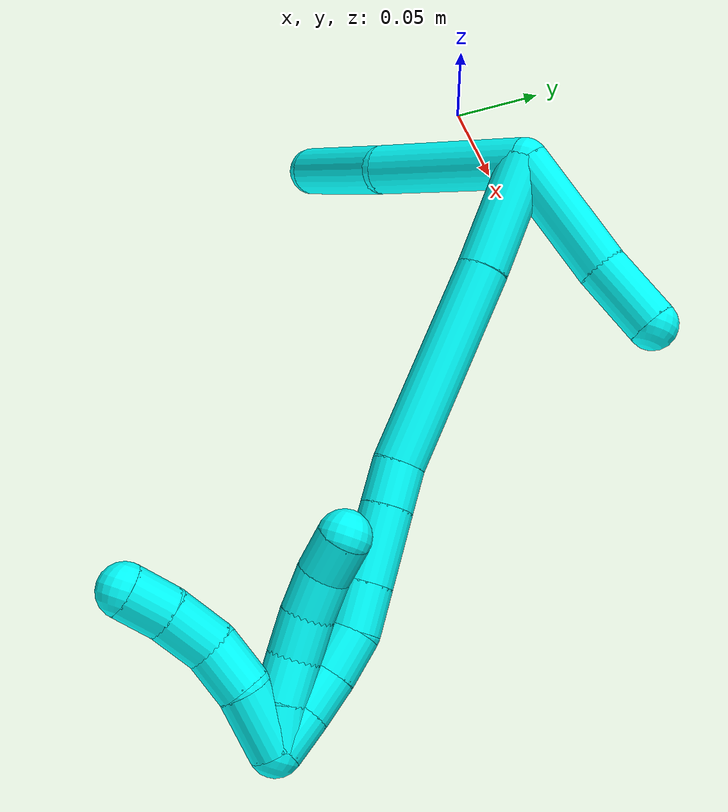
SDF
<sdf version="1.7">
 <world name="default">
  <model name="3">
   <static>0</static>
   <link name="3">
    <collision name="collision-cylinder-e_1_2_8">
     <pose>0.034282 -0.024574 0.004612 1.38529 0.940667 0.798403</pose>
     <geometry><cylinder><radius>0.0125</radius><length>0.084862</length></cylinder></geometry>
     <surface>
      <friction><ode><mu>1.16</mu><mu2>1.16</mu2><slip1>0</slip1><slip2>0</slip2></ode></friction>
      <contact><ode><kp>1e+06</kp><kd>1</kd><max_vel>0</max_vel><min_depth>0.001</min_depth></ode></contact>
     </surface>
    </collision>
    <visual name="visual-cylinder-e_1_2_8">
     <pose>0.034282 -0.024574 0.004612 1.38529 0.940667 0.798403</pose>
     <geometry><cylinder><radius>0.0125</radius><length>0.084862</length></cylinder></geometry>
     <material><ambient>0.003922 1 0.996078 1</ambient></material>
    </visual>
    <collision name="collision-cylinder-e_2_8_6">
     <pose>0.099161 -0.060173 0.00749 1.72674 1.22102 1.37157</pose>
     <geometry><cylinder><radius>0.0125</radius><length>0.065138</length></cylinder></geometry>
     <surface>
      <friction><ode><mu>1.16</mu><mu2>1.16</mu2><slip1>0</slip1><slip2>0</slip2></ode></friction>
      <contact><ode><kp>1e+06</kp><kd>1</kd><max_vel>0</max_vel><min_depth>0.001</min_depth></ode></contact>
     </surface>
    </collision>
    <visual name="visual-cylinder-e_2_8_6">
     <pose>0.099161 -0.060173 0.00749 1.72674 1.22102 1.37157</pose>
     <geometry><cylinder><radius>0.0125</radius><length>0.065138</length></cylinder></geometry>
     <material><ambient>0.003922 1 0.996078 1</ambient></material>
    </visual>
    <collision name="collision-cylinder-e_1_2_9">
     <pose>-0.007917 0.024307 0.018882 -0.910344 -0.251748 0.123715</pose>
     <geometry><cylinder><radius>0.0125</radius><length>0.063563</length></cylinder></geometry>
     <surface>
      <friction><ode><mu>1.16</mu><mu2>1.16</mu2><slip1>0</slip1><slip2>0</slip2></ode></friction>
      <contact><ode><kp>1e+06</kp><kd>1</kd><max_vel>0</max_vel><min_depth>0.001</min_depth></ode></contact>
     </surface>
    </collision>
    <visual name="visual-cylinder-e_1_2_9">
     <pose>-0.007917 0.024307 0.018882 -0.910344 -0.251748 0.123715</pose>
     <geometry><cylinder><radius>0.0125</radius><length>0.063563</length></cylinder></geometry>
     <material><ambient>0.003922 1 0.996078 1</ambient></material>
    </visual>
    <collision name="collision-cylinder-e_2_9_5">
     <pose>-0.022395 0.062358 0.047764 -0.9418 -0.368417 0.189146</pose>
     <geometry><cylinder><radius>0.0125</radius><length>0.036437</length></cylinder></geometry>
     <surface>
      <friction><ode><mu>1.16</mu><mu2>1.16</mu2><slip1>0</slip1><slip2>0</slip2></ode></friction>
      <contact><ode><kp>1e+06</kp><kd>1</kd><max_vel>0</max_vel><min_depth>0.001</min_depth></ode></contact>
     </surface>
    </collision>
    <visual name="visual-cylinder-e_2_9_5">
     <pose>-0.022395 0.062358 0.047764 -0.9418 -0.368417 0.189146</pose>
     <geometry><cylinder><radius>0.0125</radius><length>0.036437</length></cylinder></geometry>
     <material><ambient>0.003922 1 0.996078 1</ambient></material>
    </visual>
    <collision name="collision-cylinder-e_1_2_10">
     <pose>0.000393 -0.00149 0.028768 0.051746 0.013647 0.000353</pose>
     <geometry><cylinder><radius>0.0125</radius><length>0.057618</length></cylinder></geometry>
     <surface>
      <friction><ode><mu>1.16</mu><mu2>1.16</mu2><slip1>0</slip1><slip2>0</slip2></ode></friction>
      <contact><ode><kp>1e+06</kp><kd>1</kd><max_vel>0</max_vel><min_depth>0.001</min_depth></ode></contact>
     </surface>
    </collision>
    <visual name="visual-cylinder-e_1_2_10">
     <pose>0.000393 -0.00149 0.028768 0.051746 0.013647 0.000353</pose>
     <geometry><cylinder><radius>0.0125</radius><length>0.057618</length></cylinder></geometry>
     <material><ambient>0.003922 1 0.996078 1</ambient></material>
    </visual>
    <collision name="collision-cylinder-e_2_10_11">
     <pose>0.00287 -0.006974 0.107886 0.07916 0.04124 0.001633</pose>
     <geometry><cylinder><radius>0.0125</radius><length>0.101102</length></cylinder></geometry>
     <surface>
      <friction><ode><mu>1.16</mu><mu2>1.16</mu2><slip1>0</slip1><slip2>0</slip2></ode></friction>
      <contact><ode><kp>1e+06</kp><kd>1</kd><max_vel>0</max_vel><min_depth>0.001</min_depth></ode></contact>
     </surface>
    </collision>
    <visual name="visual-cylinder-e_2_10_11">
     <pose>0.00287 -0.006974 0.107886 0.07916 0.04124 0.001633</pose>
     <geometry><cylinder><radius>0.0125</radius><length>0.101102</length></cylinder></geometry>
     <material><ambient>0.003922 1 0.996078 1</ambient></material>
    </visual>
    <collision name="collision-cylinder-e_3_11_12">
     <pose>0.004232 -0.010636 0.168854 -0.031243 -0.067903 0.001061</pose>
     <geometry><cylinder><radius>0.0125</radius><length>0.021296</length></cylinder></geometry>
     <surface>
      <friction><ode><mu>1.16</mu><mu2>1.16</mu2><slip1>0</slip1><slip2>0</slip2></ode></friction>
      <contact><ode><kp>1e+06</kp><kd>1</kd><max_vel>0</max_vel><min_depth>0.001</min_depth></ode></contact>
     </surface>
    </collision>
    <visual name="visual-cylinder-e_3_11_12">
     <pose>0.004232 -0.010636 0.168854 -0.031243 -0.067903 0.001061</pose>
     <geometry><cylinder><radius>0.0125</radius><length>0.021296</length></cylinder></geometry>
     <material><ambient>0.003922 1 0.996078 1</ambient></material>
    </visual>
    <collision name="collision-cylinder-e_4_12_13">
     <pose>0.002373 -0.009639 0.197374 -0.03717 -0.063376 0.001178</pose>
     <geometry><cylinder><radius>0.0125</radius><length>0.0359</length></cylinder></geometry>
     <surface>
      <friction><ode><mu>1.16</mu><mu2>1.16</mu2><slip1>0</slip1><slip2>0</slip2></ode></friction>
      <contact><ode><kp>1e+06</kp><kd>1</kd><max_vel>0</max_vel><min_depth>0.001</min_depth></ode></contact>
     </surface>
    </collision>
    <visual name="visual-cylinder-e_4_12_13">
     <pose>0.002373 -0.009639 0.197374 -0.03717 -0.063376 0.001178</pose>
     <geometry><cylinder><radius>0.0125</radius><length>0.0359</length></cylinder></geometry>
     <material><ambient>0.003922 1 0.996078 1</ambient></material>
    </visual>
    <collision name="collision-cylinder-e_5_13_14">
     <pose>0.000498 -0.00856 0.226414 -0.037081 -0.066131 0.001227</pose>
     <geometry><cylinder><radius>0.0125</radius><length>0.022342</length></cylinder></geometry>
     <surface>
      <friction><ode><mu>1.16</mu><mu2>1.16</mu2><slip1>0</slip1><slip2>0</slip2></ode></friction>
      <contact><ode><kp>1e+06</kp><kd>1</kd><max_vel>0</max_vel><min_depth>0.001</min_depth></ode></contact>
     </surface>
    </collision>
    <visual name="visual-cylinder-e_5_13_14">
     <pose>0.000498 -0.00856 0.226414 -0.037081 -0.066131 0.001227</pose>
     <geometry><cylinder><radius>0.0125</radius><length>0.022342</length></cylinder></geometry>
     <material><ambient>0.003922 1 0.996078 1</ambient></material>
    </visual>
    <collision name="collision-cylinder-e_6_14_15">
     <pose>-0.000579 -0.010636 0.248056 0.232738 -0.031318 -0.003661</pose>
     <geometry><cylinder><radius>0.0125</radius><length>0.021599</length></cylinder></geometry>
     <surface>
      <friction><ode><mu>1.16</mu><mu2>1.16</mu2><slip1>0</slip1><slip2>0</slip2></ode></friction>
      <contact><ode><kp>1e+06</kp><kd>1</kd><max_vel>0</max_vel><min_depth>0.001</min_depth></ode></contact>
     </surface>
    </collision>
    <visual name="visual-cylinder-e_6_14_15">
     <pose>-0.000579 -0.010636 0.248056 0.232738 -0.031318 -0.003661</pose>
     <geometry><cylinder><radius>0.0125</radius><length>0.021599</length></cylinder></geometry>
     <material><ambient>0.003922 1 0.996078 1</ambient></material>
    </visual>
    <collision name="collision-cylinder-e_7_15_16">
     <pose>-0.001714 -0.016321 0.268031 0.325353 -0.079617 -0.013074</pose>
     <geometry><cylinder><radius>0.0125</radius><length>0.020057</length></cylinder></geometry>
     <surface>
      <friction><ode><mu>1.16</mu><mu2>1.16</mu2><slip1>0</slip1><slip2>0</slip2></ode></friction>
      <contact><ode><kp>1e+06</kp><kd>1</kd><max_vel>0</max_vel><min_depth>0.001</min_depth></ode></contact>
     </surface>
    </collision>
    <visual name="visual-cylinder-e_7_15_16">
     <pose>-0.001714 -0.016321 0.268031 0.325353 -0.079617 -0.013074</pose>
     <geometry><cylinder><radius>0.0125</radius><length>0.020057</length></cylinder></geometry>
     <material><ambient>0.003922 1 0.996078 1</ambient></material>
    </visual>
    <collision name="collision-cylinder-e_8_16_1">
     <pose>-0.003845 -0.023199 0.286751 0.378969 -0.133152 -0.025573</pose>
     <geometry><cylinder><radius>0.0125</radius><length>0.020087</length></cylinder></geometry>
     <surface>
      <friction><ode><mu>1.16</mu><mu2>1.16</mu2><slip1>0</slip1><slip2>0</slip2></ode></friction>
      <contact><ode><kp>1e+06</kp><kd>1</kd><max_vel>0</max_vel><min_depth>0.001</min_depth></ode></contact>
     </surface>
    </collision>
    <visual name="visual-cylinder-e_8_16_1">
     <pose>-0.003845 -0.023199 0.286751 0.378969 -0.133152 -0.025573</pose>
     <geometry><cylinder><radius>0.0125</radius><length>0.020087</length></cylinder></geometry>
     <material><ambient>0.003922 1 0.996078 1</ambient></material>
    </visual>
    <collision name="collision-cylinder-e_1_1_17">
     <pose>-0.005781 -0.03818 0.285825 2.30389 -0.03959 -0.08888</pose>
     <geometry><cylinder><radius>0.0125</radius><length>0.030433</length></cylinder></geometry>
     <surface>
      <friction><ode><mu>1.16</mu><mu2>1.16</mu2><slip1>0</slip1><slip2>0</slip2></ode></friction>
      <contact><ode><kp>1e+06</kp><kd>1</kd><max_vel>0</max_vel><min_depth>0.001</min_depth></ode></contact>
     </surface>
    </collision>
    <visual name="visual-cylinder-e_1_1_17">
     <pose>-0.005781 -0.03818 0.285825 2.30389 -0.03959 -0.08888</pose>
     <geometry><cylinder><radius>0.0125</radius><length>0.030433</length></cylinder></geometry>
     <material><ambient>0.003922 1 0.996078 1</ambient></material>
    </visual>
    <collision name="collision-cylinder-e_2_17_18">
     <pose>-0.004448 -0.059103 0.26931 2.15341 0.166391 0.307176</pose>
     <geometry><cylinder><radius>0.0125</radius><length>0.023373</length></cylinder></geometry>
     <surface>
      <friction><ode><mu>1.16</mu><mu2>1.16</mu2><slip1>0</slip1><slip2>0</slip2></ode></friction>
      <contact><ode><kp>1e+06</kp><kd>1</kd><max_vel>0</max_vel><min_depth>0.001</min_depth></ode></contact>
     </surface>
    </collision>
    <visual name="visual-cylinder-e_2_17_18">
     <pose>-0.004448 -0.059103 0.26931 2.15341 0.166391 0.307176</pose>
     <geometry><cylinder><radius>0.0125</radius><length>0.023373</length></cylinder></geometry>
     <material><ambient>0.003922 1 0.996078 1</ambient></material>
    </visual>
    <collision name="collision-cylinder-e_3_18_19">
     <pose>-0.00309 -0.080574 0.259165 1.88139 -0.046398 -0.063613</pose>
     <geometry><cylinder><radius>0.0125</radius><length>0.024913</length></cylinder></geometry>
     <surface>
      <friction><ode><mu>1.16</mu><mu2>1.16</mu2><slip1>0</slip1><slip2>0</slip2></ode></friction>
      <contact><ode><kp>1e+06</kp><kd>1</kd><max_vel>0</max_vel><min_depth>0.001</min_depth></ode></contact>
     </surface>
    </collision>
    <visual name="visual-cylinder-e_3_18_19">
     <pose>-0.00309 -0.080574 0.259165 1.88139 -0.046398 -0.063613</pose>
     <geometry><cylinder><radius>0.0125</radius><length>0.024913</length></cylinder></geometry>
     <material><ambient>0.003922 1 0.996078 1</ambient></material>
    </visual>
    <collision name="collision-cylinder-e_4_19_4">
     <pose>-0.004407 -0.102886 0.253581 1.73946 -0.069544 -0.082374</pose>
     <geometry><cylinder><radius>0.0125</radius><length>0.021281</length></cylinder></geometry>
     <surface>
      <friction><ode><mu>1.16</mu><mu2>1.16</mu2><slip1>0</slip1><slip2>0</slip2></ode></friction>
      <contact><ode><kp>1e+06</kp><kd>1</kd><max_vel>0</max_vel><min_depth>0.001</min_depth></ode></contact>
     </surface>
    </collision>
    <visual name="visual-cylinder-e_4_19_4">
     <pose>-0.004407 -0.102886 0.253581 1.73946 -0.069544 -0.082374</pose>
     <geometry><cylinder><radius>0.0125</radius><length>0.021281</length></cylinder></geometry>
     <material><ambient>0.003922 1 0.996078 1</ambient></material>
    </visual>
    <collision name="collision-cylinder-e_1_1_20">
     <pose>-0.005163 -0.029183 0.286268 2.90939 0.001615 0.013844</pose>
     <geometry><cylinder><radius>0.0125</radius><length>0.02</length></cylinder></geometry>
     <surface>
      <friction><ode><mu>1.16</mu><mu2>1.16</mu2><slip1>0</slip1><slip2>0</slip2></ode></friction>
      <contact><ode><kp>1e+06</kp><kd>1</kd><max_vel>0</max_vel><min_depth>0.001</min_depth></ode></contact>
     </surface>
    </collision>
    <visual name="visual-cylinder-e_1_1_20">
     <pose>-0.005163 -0.029183 0.286268 2.90939 0.001615 0.013844</pose>
     <geometry><cylinder><radius>0.0125</radius><length>0.02</length></cylinder></geometry>
     <material><ambient>0.003922 1 0.996078 1</ambient></material>
    </visual>
    <collision name="collision-cylinder-e_2_20_21">
     <pose>-0.004909 -0.031826 0.266545 3.10742 0.023717 1.21339</pose>
     <geometry><cylinder><radius>0.0125</radius><length>0.02</length></cylinder></geometry>
     <surface>
      <friction><ode><mu>1.16</mu><mu2>1.16</mu2><slip1>0</slip1><slip2>0</slip2></ode></friction>
      <contact><ode><kp>1e+06</kp><kd>1</kd><max_vel>0</max_vel><min_depth>0.001</min_depth></ode></contact>
     </surface>
    </collision>
    <visual name="visual-cylinder-e_2_20_21">
     <pose>-0.004909 -0.031826 0.266545 3.10742 0.023717 1.21339</pose>
     <geometry><cylinder><radius>0.0125</radius><length>0.02</length></cylinder></geometry>
     <material><ambient>0.003922 1 0.996078 1</ambient></material>
    </visual>
    <collision name="collision-cylinder-e_3_21_22">
     <pose>-0.006066 -0.032794 0.246671 3.07825 -0.139848 -2.29195</pose>
     <geometry><cylinder><radius>0.0125</radius><length>0.02</length></cylinder></geometry>
     <surface>
      <friction><ode><mu>1.16</mu><mu2>1.16</mu2><slip1>0</slip1><slip2>0</slip2></ode></friction>
      <contact><ode><kp>1e+06</kp><kd>1</kd><max_vel>0</max_vel><min_depth>0.001</min_depth></ode></contact>
     </surface>
    </collision>
    <visual name="visual-cylinder-e_3_21_22">
     <pose>-0.006066 -0.032794 0.246671 3.07825 -0.139848 -2.29195</pose>
     <geometry><cylinder><radius>0.0125</radius><length>0.02</length></cylinder></geometry>
     <material><ambient>0.003922 1 0.996078 1</ambient></material>
    </visual>
    <collision name="collision-cylinder-e_4_22_23">
     <pose>-0.01035 -0.033661 0.227218 3.11649 -0.293239 -2.972</pose>
     <geometry><cylinder><radius>0.0125</radius><length>0.02</length></cylinder></geometry>
     <surface>
      <friction><ode><mu>1.16</mu><mu2>1.16</mu2><slip1>0</slip1><slip2>0</slip2></ode></friction>
      <contact><ode><kp>1e+06</kp><kd>1</kd><max_vel>0</max_vel><min_depth>0.001</min_depth></ode></contact>
     </surface>
    </collision>
    <visual name="visual-cylinder-e_4_22_23">
     <pose>-0.01035 -0.033661 0.227218 3.11649 -0.293239 -2.972</pose>
     <geometry><cylinder><radius>0.0125</radius><length>0.02</length></cylinder></geometry>
     <material><ambient>0.003922 1 0.996078 1</ambient></material>
    </visual>
    <collision name="collision-cylinder-e_5_23_3">
     <pose>-0.018279 -0.033666 0.209013 -3.11435 -0.528013 3.0409</pose>
     <geometry><cylinder><radius>0.0125</radius><length>0.02</length></cylinder></geometry>
     <surface>
      <friction><ode><mu>1.16</mu><mu2>1.16</mu2><slip1>0</slip1><slip2>0</slip2></ode></friction>
      <contact><ode><kp>1e+06</kp><kd>1</kd><max_vel>0</max_vel><min_depth>0.001</min_depth></ode></contact>
     </surface>
    </collision>
    <visual name="visual-cylinder-e_5_23_3">
     <pose>-0.018279 -0.033666 0.209013 -3.11435 -0.528013 3.0409</pose>
     <geometry><cylinder><radius>0.0125</radius><length>0.02</length></cylinder></geometry>
     <material><ambient>0.003922 1 0.996078 1</ambient></material>
    </visual>
    <collision name="collision-sphere-3">
     <pose>-0.023317 -0.033431 0.200378 0 -0 0</pose>
     <geometry><sphere><radius>0.0125</radius></sphere></geometry>
     <surface>
      <friction><ode><mu>1.16</mu><mu2>1.16</mu2><slip1>0</slip1><slip2>0</slip2></ode></friction>
      <contact><ode><kp>1e+06</kp><kd>1</kd><max_vel>0</max_vel><min_depth>0.001</min_depth></ode></contact>
     </surface>
    </collision>
    <visual name="visual-sphere-3">
     <pose>-0.023317 -0.033431 0.200378 0 -0 0</pose>
     <geometry><sphere><radius>0.0125</radius></sphere></geometry>
     <material><ambient>0.003922 1 0.996078 1</ambient></material>
    </visual>
    <collision name="collision-sphere-23">
     <pose>-0.013241 -0.033902 0.217648 0 -0 0</pose>
     <geometry><sphere><radius>0.0125</radius></sphere></geometry>
     <surface>
      <friction><ode><mu>1.16</mu><mu2>1.16</mu2><slip1>0</slip1><slip2>0</slip2></ode></friction>
      <contact><ode><kp>1e+06</kp><kd>1</kd><max_vel>0</max_vel><min_depth>0.001</min_depth></ode></contact>
     </surface>
    </collision>
    <visual name="visual-sphere-23">
     <pose>-0.013241 -0.033902 0.217648 0 -0 0</pose>
     <geometry><sphere><radius>0.0125</radius></sphere></geometry>
     <material><ambient>0.003922 1 0.996078 1</ambient></material>
    </visual>
    <collision name="collision-sphere-22">
     <pose>-0.00746 -0.033421 0.236788 0 -0 0</pose>
     <geometry><sphere><radius>0.0125</radius></sphere></geometry>
     <surface>
      <friction><ode><mu>1.16</mu><mu2>1.16</mu2><slip1>0</slip1><slip2>0</slip2></ode></friction>
      <contact><ode><kp>1e+06</kp><kd>1</kd><max_vel>0</max_vel><min_depth>0.001</min_depth></ode></contact>
     </surface>
    </collision>
    <visual name="visual-sphere-22">
     <pose>-0.00746 -0.033421 0.236788 0 -0 0</pose>
     <geometry><sphere><radius>0.0125</radius></sphere></geometry>
     <material><ambient>0.003922 1 0.996078 1</ambient></material>
    </visual>
    <collision name="collision-sphere-21">
     <pose>-0.004672 -0.032167 0.256553 0 -0 0</pose>
     <geometry><sphere><radius>0.0125</radius></sphere></geometry>
     <surface>
      <friction><ode><mu>1.16</mu><mu2>1.16</mu2><slip1>0</slip1><slip2>0</slip2></ode></friction>
      <contact><ode><kp>1e+06</kp><kd>1</kd><max_vel>0</max_vel><min_depth>0.001</min_depth></ode></contact>
     </surface>
    </collision>
    <visual name="visual-sphere-21">
     <pose>-0.004672 -0.032167 0.256553 0 -0 0</pose>
     <geometry><sphere><radius>0.0125</radius></sphere></geometry>
     <material><ambient>0.003922 1 0.996078 1</ambient></material>
    </visual>
    <collision name="collision-sphere-20">
     <pose>-0.005146 -0.031484 0.276536 0 -0 0</pose>
     <geometry><sphere><radius>0.0125</radius></sphere></geometry>
     <surface>
      <friction><ode><mu>1.16</mu><mu2>1.16</mu2><slip1>0</slip1><slip2>0</slip2></ode></friction>
      <contact><ode><kp>1e+06</kp><kd>1</kd><max_vel>0</max_vel><min_depth>0.001</min_depth></ode></contact>
     </surface>
    </collision>
    <visual name="visual-sphere-20">
     <pose>-0.005146 -0.031484 0.276536 0 -0 0</pose>
     <geometry><sphere><radius>0.0125</radius></sphere></geometry>
     <material><ambient>0.003922 1 0.996078 1</ambient></material>
    </visual>
    <collision name="collision-sphere-4">
     <pose>-0.005146 -0.11335 0.251799 0 -0 0</pose>
     <geometry><sphere><radius>0.0125</radius></sphere></geometry>
     <surface>
      <friction><ode><mu>1.16</mu><mu2>1.16</mu2><slip1>0</slip1><slip2>0</slip2></ode></friction>
      <contact><ode><kp>1e+06</kp><kd>1</kd><max_vel>0</max_vel><min_depth>0.001</min_depth></ode></contact>
     </surface>
    </collision>
    <visual name="visual-sphere-4">
     <pose>-0.005146 -0.11335 0.251799 0 -0 0</pose>
     <geometry><sphere><radius>0.0125</radius></sphere></geometry>
     <material><ambient>0.003922 1 0.996078 1</ambient></material>
    </visual>
    <collision name="collision-sphere-10">
     <pose>0.000786 -0.00298 0.057536 0 -0 0</pose>
     <geometry><sphere><radius>0.0125</radius></sphere></geometry>
     <surface>
      <friction><ode><mu>1.16</mu><mu2>1.16</mu2><slip1>0</slip1><slip2>0</slip2></ode></friction>
      <contact><ode><kp>1e+06</kp><kd>1</kd><max_vel>0</max_vel><min_depth>0.001</min_depth></ode></contact>
     </surface>
    </collision>
    <visual name="visual-sphere-10">
     <pose>0.000786 -0.00298 0.057536 0 -0 0</pose>
     <geometry><sphere><radius>0.0125</radius></sphere></geometry>
     <material><ambient>0.003922 1 0.996078 1</ambient></material>
    </visual>
    <collision name="collision-sphere-5">
     <pose>-0.028956 0.076101 0.057764 0 -0 0</pose>
     <geometry><sphere><radius>0.0125</radius></sphere></geometry>
     <surface>
      <friction><ode><mu>1.16</mu><mu2>1.16</mu2><slip1>0</slip1><slip2>0</slip2></ode></friction>
      <contact><ode><kp>1e+06</kp><kd>1</kd><max_vel>0</max_vel><min_depth>0.001</min_depth></ode></contact>
     </surface>
    </collision>
    <visual name="visual-sphere-5">
     <pose>-0.028956 0.076101 0.057764 0 -0 0</pose>
     <geometry><sphere><radius>0.0125</radius></sphere></geometry>
     <material><ambient>0.003922 1 0.996078 1</ambient></material>
    </visual>
    <collision name="collision-sphere-6">
     <pose>0.129758 -0.071198 0.005757 0 -0 0</pose>
     <geometry><sphere><radius>0.0125</radius></sphere></geometry>
     <surface>
      <friction><ode><mu>1.16</mu><mu2>1.16</mu2><slip1>0</slip1><slip2>0</slip2></ode></friction>
      <contact><ode><kp>1e+06</kp><kd>1</kd><max_vel>0</max_vel><min_depth>0.001</min_depth></ode></contact>
     </surface>
    </collision>
    <visual name="visual-sphere-6">
     <pose>0.129758 -0.071198 0.005757 0 -0 0</pose>
     <geometry><sphere><radius>0.0125</radius></sphere></geometry>
     <material><ambient>0.003922 1 0.996078 1</ambient></material>
    </visual>
    <collision name="collision-sphere-9">
     <pose>-0.015833 0.048614 0.037765 0 -0 0</pose>
     <geometry><sphere><radius>0.0125</radius></sphere></geometry>
     <surface>
      <friction><ode><mu>1.16</mu><mu2>1.16</mu2><slip1>0</slip1><slip2>0</slip2></ode></friction>
      <contact><ode><kp>1e+06</kp><kd>1</kd><max_vel>0</max_vel><min_depth>0.001</min_depth></ode></contact>
     </surface>
    </collision>
    <visual name="visual-sphere-9">
     <pose>-0.015833 0.048614 0.037765 0 -0 0</pose>
     <geometry><sphere><radius>0.0125</radius></sphere></geometry>
     <material><ambient>0.003922 1 0.996078 1</ambient></material>
    </visual>
    <collision name="collision-sphere-2">
     <geometry><sphere><radius>0.0125</radius></sphere></geometry>
     <surface>
      <friction><ode><mu>1.16</mu><mu2>1.16</mu2><slip1>0</slip1><slip2>0</slip2></ode></friction>
      <contact><ode><kp>1e+06</kp><kd>1</kd><max_vel>0</max_vel><min_depth>0.001</min_depth></ode></contact>
     </surface>
    </collision>
    <visual name="visual-sphere-2">
     <geometry><sphere><radius>0.0125</radius></sphere></geometry>
     <material><ambient>0.003922 1 0.996078 1</ambient></material>
    </visual>
    <collision name="collision-sphere-19">
     <pose>-0.003668 -0.092422 0.255362 0 -0 0</pose>
     <geometry><sphere><radius>0.0125</radius></sphere></geometry>
     <surface>
      <friction><ode><mu>1.16</mu><mu2>1.16</mu2><slip1>0</slip1><slip2>0</slip2></ode></friction>
      <contact><ode><kp>1e+06</kp><kd>1</kd><max_vel>0</max_vel><min_depth>0.001</min_depth></ode></contact>
     </surface>
    </collision>
    <visual name="visual-sphere-19">
     <pose>-0.003668 -0.092422 0.255362 0 -0 0</pose>
     <geometry><sphere><radius>0.0125</radius></sphere></geometry>
     <material><ambient>0.003922 1 0.996078 1</ambient></material>
    </visual>
    <collision name="collision-sphere-8">
     <pose>0.068565 -0.049147 0.009223 0 -0 0</pose>
     <geometry><sphere><radius>0.0125</radius></sphere></geometry>
     <surface>
      <friction><ode><mu>1.16</mu><mu2>1.16</mu2><slip1>0</slip1><slip2>0</slip2></ode></friction>
      <contact><ode><kp>1e+06</kp><kd>1</kd><max_vel>0</max_vel><min_depth>0.001</min_depth></ode></contact>
     </surface>
    </collision>
    <visual name="visual-sphere-8">
     <pose>0.068565 -0.049147 0.009223 0 -0 0</pose>
     <geometry><sphere><radius>0.0125</radius></sphere></geometry>
     <material><ambient>0.003922 1 0.996078 1</ambient></material>
    </visual>
    <collision name="collision-sphere-11">
     <pose>0.004955 -0.010968 0.158235 0 -0 0</pose>
     <geometry><sphere><radius>0.0125</radius></sphere></geometry>
     <surface>
      <friction><ode><mu>1.16</mu><mu2>1.16</mu2><slip1>0</slip1><slip2>0</slip2></ode></friction>
      <contact><ode><kp>1e+06</kp><kd>1</kd><max_vel>0</max_vel><min_depth>0.001</min_depth></ode></contact>
     </surface>
    </collision>
    <visual name="visual-sphere-11">
     <pose>0.004955 -0.010968 0.158235 0 -0 0</pose>
     <geometry><sphere><radius>0.0125</radius></sphere></geometry>
     <material><ambient>0.003922 1 0.996078 1</ambient></material>
    </visual>
    <collision name="collision-sphere-12">
     <pose>0.00351 -0.010304 0.179472 0 -0 0</pose>
     <geometry><sphere><radius>0.0125</radius></sphere></geometry>
     <surface>
      <friction><ode><mu>1.16</mu><mu2>1.16</mu2><slip1>0</slip1><slip2>0</slip2></ode></friction>
      <contact><ode><kp>1e+06</kp><kd>1</kd><max_vel>0</max_vel><min_depth>0.001</min_depth></ode></contact>
     </surface>
    </collision>
    <visual name="visual-sphere-12">
     <pose>0.00351 -0.010304 0.179472 0 -0 0</pose>
     <geometry><sphere><radius>0.0125</radius></sphere></geometry>
     <material><ambient>0.003922 1 0.996078 1</ambient></material>
    </visual>
    <collision name="collision-sphere-13">
     <pose>0.001236 -0.008973 0.215275 0 -0 0</pose>
     <geometry><sphere><radius>0.0125</radius></sphere></geometry>
     <surface>
      <friction><ode><mu>1.16</mu><mu2>1.16</mu2><slip1>0</slip1><slip2>0</slip2></ode></friction>
      <contact><ode><kp>1e+06</kp><kd>1</kd><max_vel>0</max_vel><min_depth>0.001</min_depth></ode></contact>
     </surface>
    </collision>
    <visual name="visual-sphere-13">
     <pose>0.001236 -0.008973 0.215275 0 -0 0</pose>
     <geometry><sphere><radius>0.0125</radius></sphere></geometry>
     <material><ambient>0.003922 1 0.996078 1</ambient></material>
    </visual>
    <collision name="collision-sphere-14">
     <pose>-0.000241 -0.008146 0.237553 0 -0 0</pose>
     <geometry><sphere><radius>0.0125</radius></sphere></geometry>
     <surface>
      <friction><ode><mu>1.16</mu><mu2>1.16</mu2><slip1>0</slip1><slip2>0</slip2></ode></friction>
      <contact><ode><kp>1e+06</kp><kd>1</kd><max_vel>0</max_vel><min_depth>0.001</min_depth></ode></contact>
     </surface>
    </collision>
    <visual name="visual-sphere-14">
     <pose>-0.000241 -0.008146 0.237553 0 -0 0</pose>
     <geometry><sphere><radius>0.0125</radius></sphere></geometry>
     <material><ambient>0.003922 1 0.996078 1</ambient></material>
    </visual>
    <collision name="collision-sphere-15">
     <pose>-0.000917 -0.013125 0.258559 0 -0 0</pose>
     <geometry><sphere><radius>0.0125</radius></sphere></geometry>
     <surface>
      <friction><ode><mu>1.16</mu><mu2>1.16</mu2><slip1>0</slip1><slip2>0</slip2></ode></friction>
      <contact><ode><kp>1e+06</kp><kd>1</kd><max_vel>0</max_vel><min_depth>0.001</min_depth></ode></contact>
     </surface>
    </collision>
    <visual name="visual-sphere-15">
     <pose>-0.000917 -0.013125 0.258559 0 -0 0</pose>
     <geometry><sphere><radius>0.0125</radius></sphere></geometry>
     <material><ambient>0.003922 1 0.996078 1</ambient></material>
    </visual>
    <collision name="collision-sphere-16">
     <pose>-0.002512 -0.019516 0.277503 0 -0 0</pose>
     <geometry><sphere><radius>0.0125</radius></sphere></geometry>
     <surface>
      <friction><ode><mu>1.16</mu><mu2>1.16</mu2><slip1>0</slip1><slip2>0</slip2></ode></friction>
      <contact><ode><kp>1e+06</kp><kd>1</kd><max_vel>0</max_vel><min_depth>0.001</min_depth></ode></contact>
     </surface>
    </collision>
    <visual name="visual-sphere-16">
     <pose>-0.002512 -0.019516 0.277503 0 -0 0</pose>
     <geometry><sphere><radius>0.0125</radius></sphere></geometry>
     <material><ambient>0.003922 1 0.996078 1</ambient></material>
    </visual>
    <collision name="collision-sphere-1">
     <pose>-0.005179 -0.026882 0.295999 0 -0 0</pose>
     <geometry><sphere><radius>0.0125</radius></sphere></geometry>
     <surface>
      <friction><ode><mu>1.16</mu><mu2>1.16</mu2><slip1>0</slip1><slip2>0</slip2></ode></friction>
      <contact><ode><kp>1e+06</kp><kd>1</kd><max_vel>0</max_vel><min_depth>0.001</min_depth></ode></contact>
     </surface>
    </collision>
    <visual name="visual-sphere-1">
     <pose>-0.005179 -0.026882 0.295999 0 -0 0</pose>
     <geometry><sphere><radius>0.0125</radius></sphere></geometry>
     <material><ambient>0.003922 1 0.996078 1</ambient></material>
    </visual>
    <collision name="collision-sphere-18">
     <pose>-0.002512 -0.068726 0.262968 0 -0 0</pose>
     <geometry><sphere><radius>0.0125</radius></sphere></geometry>
     <surface>
      <friction><ode><mu>1.16</mu><mu2>1.16</mu2><slip1>0</slip1><slip2>0</slip2></ode></friction>
      <contact><ode><kp>1e+06</kp><kd>1</kd><max_vel>0</max_vel><min_depth>0.001</min_depth></ode></contact>
     </surface>
    </collision>
    <visual name="visual-sphere-18">
     <pose>-0.002512 -0.068726 0.262968 0 -0 0</pose>
     <geometry><sphere><radius>0.0125</radius></sphere></geometry>
     <material><ambient>0.003922 1 0.996078 1</ambient></material>
    </visual>
    <collision name="collision-sphere-17">
     <pose>-0.006383 -0.049479 0.275651 0 -0 0</pose>
     <geometry><sphere><radius>0.0125</radius></sphere></geometry>
     <surface>
      <friction><ode><mu>1.16</mu><mu2>1.16</mu2><slip1>0</slip1><slip2>0</slip2></ode></friction>
      <contact><ode><kp>1e+06</kp><kd>1</kd><max_vel>0</max_vel><min_depth>0.001</min_depth></ode></contact>
     </surface>
    </collision>
    <visual name="visual-sphere-17">
     <pose>-0.006383 -0.049479 0.275651 0 -0 0</pose>
     <geometry><sphere><radius>0.0125</radius></sphere></geometry>
     <material><ambient>0.003922 1 0.996078 1</ambient></material>
    </visual>
    <inertial>
     <pose>0.009438 -0.019638 0.133572 0 -0 0</pose>
     <mass>0.75</mass>
     <inertia><ixx>0.000223</ixx><ixy>0</ixy><ixz>0</ixz><iyy>0.000224</iyy><iyz>0</iyz><izz>-9e-06</izz></inertia>
    </inertial>
   </link>
   <pose>0.132452 -0.019206 0.104216 -2.26572 0.966621 -2.84979</pose>
  </model>
 </world>
</sdf>
